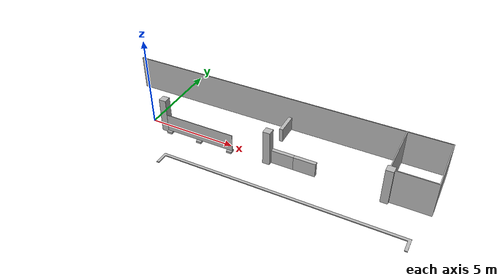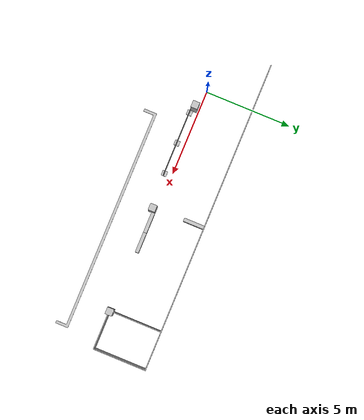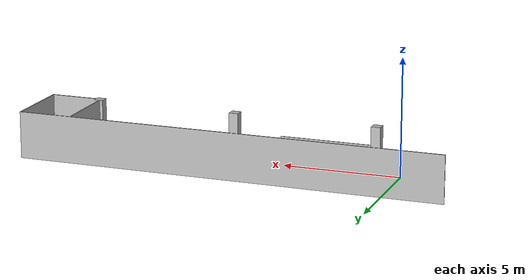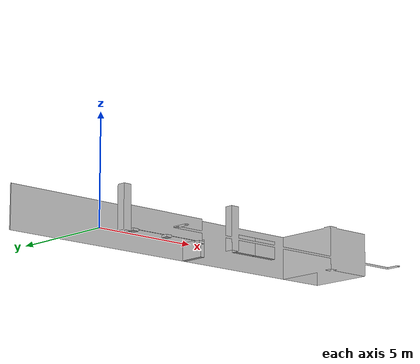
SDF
<?xml version="1.0"?>
<sdf version="1.6">
  <model name="impuls/walls" type="wall">
    <static>true</static>
    <link name="1_link">
      <collision name="1_col">
        <geometry>
          <mesh>
            <uri>model://impuls/walls/shape/heightmap.stl</uri>
          </mesh>
        </geometry>
      </collision>
      <visual name="1_vis">
        <geometry>
          <mesh>
            <uri>model://impuls/walls/shape/heightmap.stl</uri>
          </mesh>
        </geometry>
      </visual>
      <pose>0 0 0 0 0 0</pose>
    </link>
    <include>
        <uri>model://robotics_testlabs/block120</uri>
        <name>impuls/walls/block1</name>
        <pose>7.17 2.15 0 0 0 -1.57079632679</pose>
    </include>
    <include>
        <uri>model://robotics_testlabs/block120</uri>
        <name>impuls/walls/block2</name>
        <pose>8.08 -0.175 0 0 0 0</pose>
    </include>
    <include>
        <uri>model://robotics_testlabs/block120</uri>
        <name>impuls/walls/block3</name>
        <pose>9.28 -0.175 0 0 0 0</pose>
    </include>
    <include>
        <uri>model://impuls/thin_wall</uri>
        <name>impuls/walls/thin_wall</name>
        <pose>3.305 -0.4625 0 0 0 0</pose>
    </include>
  </model>
</sdf>

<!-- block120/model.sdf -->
<sdf version="1.6">
  <model name="robotics_testlabs/block120" type="wall">
    <static>true</static>
    <link name="1_link">
      <collision name="1_col">
        <geometry>
          <box>
            <size>1.2 0.2 0.8</size>
          </box>
        </geometry>
      </collision>
      <visual name="1_vis">
        <geometry>
          <box>
            <size>1.2 0.2 0.8</size>
          </box>
        </geometry>
      </visual>
      <pose>0.0 0.0 0.4 0 0 0</pose>
    </link>
  </model>
</sdf>

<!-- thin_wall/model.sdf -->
<sdf version="1.6">
  <model name="impuls/thin_wall" type="wall">
    <static>true</static>
    <link name="wall">
      <collision name="wall_col">
        <geometry>
          <box>
            <size>4.01 0.025 1.005</size>
          </box>
        </geometry>
      </collision>
      <visual name="wall_vis">
        <geometry>
          <box>
            <size>4.01 0.025 1.005</size>
          </box>
        </geometry>
      </visual>
      <pose>0.0 0.0 0.6125 0 0 0</pose>
    </link>
    <link name="block1">
      <collision name="block1_col">
        <geometry>
          <box>
            <size>0.3 0.3 0.11</size>
          </box>
        </geometry>
      </collision>
      <visual name="block1_vis">
        <geometry>
          <box>
            <size>0.3 0.3 0.11</size>
          </box>
        </geometry>
      </visual>
      <pose>0.0 0.0 0.055 0 0 0</pose>
    </link>
    <link name="block2">
      <collision name="block2_col">
        <geometry>
          <box>
            <size>0.3 0.3 0.11</size>
          </box>
        </geometry>
      </collision>
      <visual name="block2_vis">
        <geometry>
          <box>
            <size>0.3 0.3 0.11</size>
          </box>
        </geometry>
      </visual>
      <pose>1.855 0.0 0.055 0 0 0</pose>
    </link>
    <link name="block3">
      <collision name="block3_col">
        <geometry>
          <box>
            <size>0.3 0.3 0.11</size>
          </box>
        </geometry>
      </collision>
      <visual name="block3_vis">
        <geometry>
          <box>
            <size>0.3 0.3 0.11</size>
          </box>
        </geometry>
      </visual>
      <pose>-1.855 0.0 0.055 0 0 0</pose>
    </link>
  </model>
</sdf>
